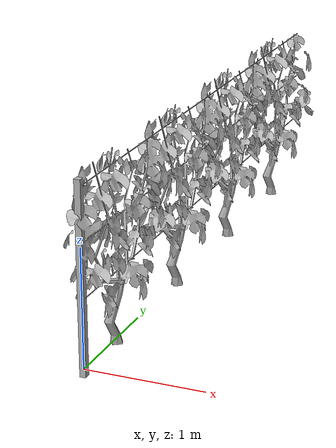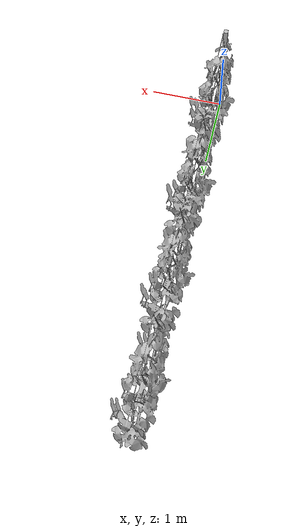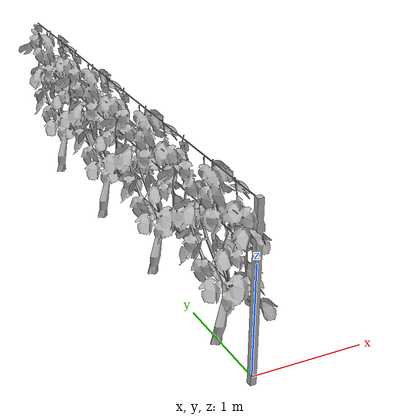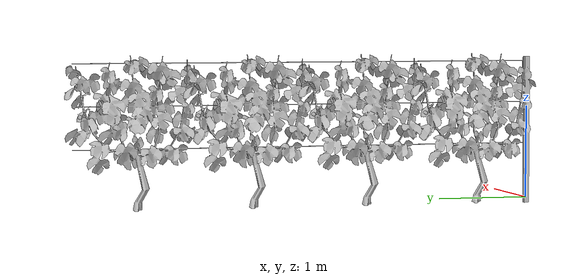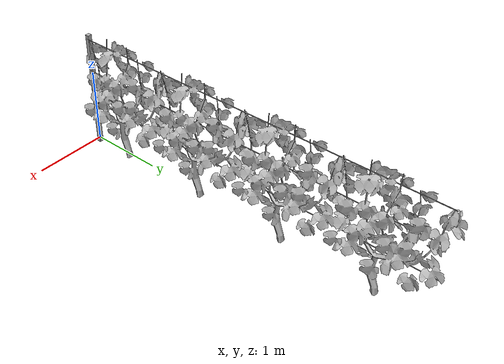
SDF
<?xml version='1.0'?>
<sdf version='1.7'>
  <model name='romea_vine'>
    <pose>0 0 0 0 0 0</pose>
    <static>true</static>

    <link name='link'>
      <visual name='visual'>
        <geometry>
          <mesh>
            <uri>model://romea_vine/meshes/vine.dae</uri>
          </mesh>
        </geometry>
        <material>
          <script>
            <uri>model://romea_vine/materials/scripts</uri>
            <uri>model://romea_vine/materials/textures</uri>
            <name>romea_vine/vine</name>
          </script>
        </material>
      </visual>

      <collision name='collision'>
        <geometry>
          <mesh>
            <uri>model://romea_vine/meshes/vine.dae</uri>
          </mesh>
        </geometry>
        <surface>
          <contact>
            <collide_without_contact>true</collide_without_contact>
          </contact>
        </surface>
      </collision>
    </link>
  </model>
</sdf>
